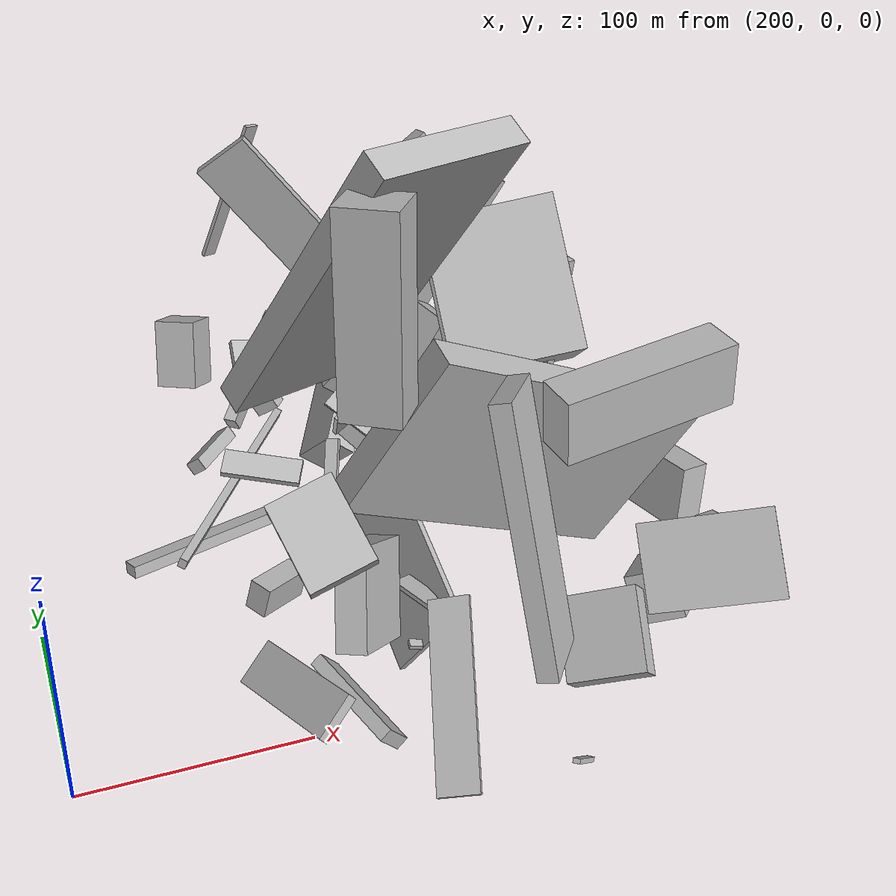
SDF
<sdf version="1.6">
 <world name="default">
  <model name="building_1">
   <static>0</static>
   <pose>416.7283779944425 210.92979826897448 18.98239796938811 0.8828051827888167 0.32550872839916073 -2.833453676443939</pose>
   <link name="link">
    <gravity>0</gravity>
    <pose>0 0 6.5 0 0 0</pose>
    <collision name="collision"><geometry><box><size>4 32 13</size></box></geometry></collision>
    <visual name="visual">
     <cast_shadows>0</cast_shadows>
     <geometry><box><size>4 32 13</size></box></geometry>
     <material>
      <script>
       <uri>model://HANNAS_wall/materials/scripts</uri>
       <uri>model://HANNAS_wall/materials/textures</uri>
       <name>vrc/HANNAS_wall</name>
      </script>
     </material>
    </visual>
   </link>
  </model>
  <model name="building_7">
   <static>0</static>
   <pose>321.18293519040907 90.14032634972115 120.52418748455804 0.07833895289617772 -0.5774066002061583 1.9267652480553856</pose>
   <link name="link">
    <gravity>0</gravity>
    <pose>0 0 75.0 0 0 0</pose>
    <collision name="collision"><geometry><box><size>13 71 150</size></box></geometry></collision>
    <visual name="visual">
     <cast_shadows>0</cast_shadows>
     <geometry><box><size>13 71 150</size></box></geometry>
     <material>
      <script>
       <uri>model://HANNAS_wall/materials/scripts</uri>
       <uri>model://HANNAS_wall/materials/textures</uri>
       <name>vrc/HANNAS_wall</name>
      </script>
     </material>
    </visual>
   </link>
  </model>
  <model name="building_13">
   <static>0</static>
   <pose>305.72085957441516 170.0902135539302 17.677615049925144 2.993033016660117 -1.1944992597726782 -0.42007366668599083</pose>
   <link name="link">
    <gravity>0</gravity>
    <pose>0 0 2.0 0 0 0</pose>
    <collision name="collision"><geometry><box><size>5 150 4</size></box></geometry></collision>
    <visual name="visual">
     <cast_shadows>0</cast_shadows>
     <geometry><box><size>5 150 4</size></box></geometry>
     <material>
      <script>
       <uri>model://HANNAS_wall/materials/scripts</uri>
       <uri>model://HANNAS_wall/materials/textures</uri>
       <name>vrc/HANNAS_wall</name>
      </script>
     </material>
    </visual>
   </link>
  </model>
  <model name="building_15">
   <static>0</static>
   <pose>293.0118756271913 4.474258770411966 95.61094297676232 -1.181248603299123 0.5923829690147229 -1.2979223778832998</pose>
   <link name="link">
    <gravity>0</gravity>
    <pose>0 0 14.5 0 0 0</pose>
    <collision name="collision"><geometry><box><size>39 8 29</size></box></geometry></collision>
    <visual name="visual">
     <cast_shadows>0</cast_shadows>
     <geometry><box><size>39 8 29</size></box></geometry>
     <material>
      <script>
       <uri>model://HANNAS_wall/materials/scripts</uri>
       <uri>model://HANNAS_wall/materials/textures</uri>
       <name>vrc/HANNAS_wall</name>
      </script>
     </material>
    </visual>
   </link>
  </model>
  <model name="building_16">
   <static>0</static>
   <pose>411.00323146773076 41.315731008576535 88.35890527292715 1.0472873956849313 1.0478627989128555 2.7460470604189346</pose>
   <link name="link">
    <gravity>0</gravity>
    <pose>0 0 7.5 0 0 0</pose>
    <collision name="collision"><geometry><box><size>83 150 15</size></box></geometry></collision>
    <visual name="visual">
     <cast_shadows>0</cast_shadows>
     <geometry><box><size>83 150 15</size></box></geometry>
     <material>
      <script>
       <uri>model://HANNAS_wall/materials/scripts</uri>
       <uri>model://HANNAS_wall/materials/textures</uri>
       <name>vrc/HANNAS_wall</name>
      </script>
     </material>
    </visual>
   </link>
  </model>
  <model name="building_29">
   <static>0</static>
   <pose>388.6430166010418 163.41789401701087 66.54947921734367 -2.8306492783292816 -0.9800535455750119 0.1352461155828603</pose>
   <link name="link">
    <gravity>0</gravity>
    <pose>0 0 7.0 0 0 0</pose>
    <collision name="collision"><geometry><box><size>80 23 14</size></box></geometry></collision>
    <visual name="visual">
     <cast_shadows>0</cast_shadows>
     <geometry><box><size>80 23 14</size></box></geometry>
     <material>
      <script>
       <uri>model://HANNAS_wall/materials/scripts</uri>
       <uri>model://HANNAS_wall/materials/textures</uri>
       <name>vrc/HANNAS_wall</name>
      </script>
     </material>
    </visual>
   </link>
  </model>
  <model name="building_34">
   <static>0</static>
   <pose>457.249233680536 230.10714518390355 50.29948453529093 1.4610760816705493 0.3465931190292476 -0.05478114516371952</pose>
   <link name="link">
    <gravity>0</gravity>
    <pose>0 0 14.0 0 0 0</pose>
    <collision name="collision"><geometry><box><size>4 91 28</size></box></geometry></collision>
    <visual name="visual">
     <cast_shadows>0</cast_shadows>
     <geometry><box><size>4 91 28</size></box></geometry>
     <material>
      <script>
       <uri>model://HANNAS_wall/materials/scripts</uri>
       <uri>model://HANNAS_wall/materials/textures</uri>
       <name>vrc/HANNAS_wall</name>
      </script>
     </material>
    </visual>
   </link>
  </model>
  <model name="building_36">
   <static>0</static>
   <pose>457.0760395988106 278.03870297747267 100.75126773818518 1.3999977492001678 -0.5422269586380859 0.1986078250218042</pose>
   <link name="link">
    <gravity>0</gravity>
    <pose>0 0 5.0 0 0 0</pose>
    <collision name="collision"><geometry><box><size>34 93 10</size></box></geometry></collision>
    <visual name="visual">
     <cast_shadows>0</cast_shadows>
     <geometry><box><size>34 93 10</size></box></geometry>
     <material>
      <script>
       <uri>model://HANNAS_wall/materials/scripts</uri>
       <uri>model://HANNAS_wall/materials/textures</uri>
       <name>vrc/HANNAS_wall</name>
      </script>
     </material>
    </visual>
   </link>
  </model>
  <model name="building_37">
   <static>0</static>
   <pose>379.0592005224741 -23.764757103029154 96.92471146740642 1.7718425149192778 0.2510704126976804 2.56736003662285</pose>
   <link name="link">
    <gravity>0</gravity>
    <pose>0 0 18.0 0 0 0</pose>
    <collision name="collision"><geometry><box><size>9 117 36</size></box></geometry></collision>
    <visual name="visual">
     <cast_shadows>0</cast_shadows>
     <geometry><box><size>9 117 36</size></box></geometry>
     <material>
      <script>
       <uri>model://HANNAS_wall/materials/scripts</uri>
       <uri>model://HANNAS_wall/materials/textures</uri>
       <name>vrc/HANNAS_wall</name>
      </script>
     </material>
    </visual>
   </link>
  </model>
  <model name="building_39">
   <static>0</static>
   <pose>442.8398557383572 117.53490383616747 67.34212026707625 1.6865817141151425 0.20395103959422184 -0.6415227648487057</pose>
   <link name="link">
    <gravity>0</gravity>
    <pose>0 0 20.0 0 0 0</pose>
    <collision name="collision"><geometry><box><size>14 35 40</size></box></geometry></collision>
    <visual name="visual">
     <cast_shadows>0</cast_shadows>
     <geometry><box><size>14 35 40</size></box></geometry>
     <material>
      <script>
       <uri>model://HANNAS_wall/materials/scripts</uri>
       <uri>model://HANNAS_wall/materials/textures</uri>
       <name>vrc/HANNAS_wall</name>
      </script>
     </material>
    </visual>
   </link>
  </model>
  <model name="building_46">
   <static>0</static>
   <pose>457.6577896727 179.8000820094232 74.88433627355745 1.6225985377909675 -0.5171672315456065 0.15397538739588865</pose>
   <link name="link">
    <gravity>0</gravity>
    <pose>0 0 13.0 0 0 0</pose>
    <collision name="collision"><geometry><box><size>6 76 26</size></box></geometry></collision>
    <visual name="visual">
     <cast_shadows>0</cast_shadows>
     <geometry><box><size>6 76 26</size></box></geometry>
     <material>
      <script>
       <uri>model://HANNAS_wall/materials/scripts</uri>
       <uri>model://HANNAS_wall/materials/textures</uri>
       <name>vrc/HANNAS_wall</name>
      </script>
     </material>
    </visual>
   </link>
  </model>
  <model name="building_56">
   <static>0</static>
   <pose>363.96399760905854 201.25691900231197 29.23682638233622 -2.523152872906114 -0.7529717049045235 -0.963471648952157</pose>
   <link name="link">
    <gravity>0</gravity>
    <pose>0 0 8.5 0 0 0</pose>
    <collision name="collision"><geometry><box><size>27 47 17</size></box></geometry></collision>
    <visual name="visual">
     <cast_shadows>0</cast_shadows>
     <geometry><box><size>27 47 17</size></box></geometry>
     <material>
      <script>
       <uri>model://HANNAS_wall/materials/scripts</uri>
       <uri>model://HANNAS_wall/materials/textures</uri>
       <name>vrc/HANNAS_wall</name>
      </script>
     </material>
    </visual>
   </link>
  </model>
  <model name="building_58">
   <static>0</static>
   <pose>329.5560212792253 38.69504867784643 39.858980811942224 1.2039733850542333 -1.0369723725487037 1.2764648942042573</pose>
   <link name="link">
    <gravity>0</gravity>
    <pose>0 0 7.0 0 0 0</pose>
    <collision name="collision"><geometry><box><size>45 43 14</size></box></geometry></collision>
    <visual name="visual">
     <cast_shadows>0</cast_shadows>
     <geometry><box><size>45 43 14</size></box></geometry>
     <material>
      <script>
       <uri>model://HANNAS_wall/materials/scripts</uri>
       <uri>model://HANNAS_wall/materials/textures</uri>
       <name>vrc/HANNAS_wall</name>
      </script>
     </material>
    </visual>
   </link>
  </model>
  <model name="building_66">
   <static>0</static>
   <pose>399.27912694415147 125.6979651761637 123.77829271662075 1.2284308621992117 -0.9448046200631898 1.6108726302940024</pose>
   <link name="link">
    <gravity>0</gravity>
    <pose>0 0 30.0 0 0 0</pose>
    <collision name="collision"><geometry><box><size>71 62 60</size></box></geometry></collision>
    <visual name="visual">
     <cast_shadows>0</cast_shadows>
     <geometry><box><size>71 62 60</size></box></geometry>
     <material>
      <script>
       <uri>model://HANNAS_wall/materials/scripts</uri>
       <uri>model://HANNAS_wall/materials/textures</uri>
       <name>vrc/HANNAS_wall</name>
      </script>
     </material>
    </visual>
   </link>
  </model>
  <model name="building_69">
   <static>0</static>
   <pose>365.8626949552328 266.1390472893552 84.93098804419613 0.911775679731943 -0.11340827124241343 1.2286444047596934</pose>
   <link name="link">
    <gravity>0</gravity>
    <pose>0 0 16.0 0 0 0</pose>
    <collision name="collision"><geometry><box><size>5 150 32</size></box></geometry></collision>
    <visual name="visual">
     <cast_shadows>0</cast_shadows>
     <geometry><box><size>5 150 32</size></box></geometry>
     <material>
      <script>
       <uri>model://HANNAS_wall/materials/scripts</uri>
       <uri>model://HANNAS_wall/materials/textures</uri>
       <name>vrc/HANNAS_wall</name>
      </script>
     </material>
    </visual>
   </link>
  </model>
  <model name="building_73">
   <static>0</static>
   <pose>476.47829088824085 258.6457575517334 19.08068131936118 1.6131036434345054 -0.4751557094998857 -2.8073766236844353</pose>
   <link name="link">
    <gravity>0</gravity>
    <pose>0 0 7.0 0 0 0</pose>
    <collision name="collision"><geometry><box><size>19 9 14</size></box></geometry></collision>
    <visual name="visual">
     <cast_shadows>0</cast_shadows>
     <geometry><box><size>19 9 14</size></box></geometry>
     <material>
      <script>
       <uri>model://HANNAS_wall/materials/scripts</uri>
       <uri>model://HANNAS_wall/materials/textures</uri>
       <name>vrc/HANNAS_wall</name>
      </script>
     </material>
    </visual>
   </link>
  </model>
  <model name="building_75">
   <static>0</static>
   <pose>430.14357798420775 187.78840390034736 52.85955436321646 0.9136845108514831 0.03224375944392112 -1.0505137641790114</pose>
   <link name="link">
    <gravity>0</gravity>
    <pose>0 0 2.5 0 0 0</pose>
    <collision name="collision"><geometry><box><size>15 52 5</size></box></geometry></collision>
    <visual name="visual">
     <cast_shadows>0</cast_shadows>
     <geometry><box><size>15 52 5</size></box></geometry>
     <material>
      <script>
       <uri>model://HANNAS_wall/materials/scripts</uri>
       <uri>model://HANNAS_wall/materials/textures</uri>
       <name>vrc/HANNAS_wall</name>
      </script>
     </material>
    </visual>
   </link>
  </model>
  <model name="building_78">
   <static>0</static>
   <pose>449.657005607969 99.06475988580239 122.0125334129476 -0.8325012953534934 -1.4602866425835055 -0.442791761606325</pose>
   <link name="link">
    <gravity>0</gravity>
    <pose>0 0 25.0 0 0 0</pose>
    <collision name="collision"><geometry><box><size>59 4 50</size></box></geometry></collision>
    <visual name="visual">
     <cast_shadows>0</cast_shadows>
     <geometry><box><size>59 4 50</size></box></geometry>
     <material>
      <script>
       <uri>model://HANNAS_wall/materials/scripts</uri>
       <uri>model://HANNAS_wall/materials/textures</uri>
       <name>vrc/HANNAS_wall</name>
      </script>
     </material>
    </visual>
   </link>
  </model>
  <model name="building_80">
   <static>0</static>
   <pose>489.20256372766295 196.7360834247855 27.286272871165902 2.3840841821876944 -0.7897469009757659 -2.793348272971265</pose>
   <link name="link">
    <gravity>0</gravity>
    <pose>0 0 6.0 0 0 0</pose>
    <collision name="collision"><geometry><box><size>4 8 12</size></box></geometry></collision>
    <visual name="visual">
     <cast_shadows>0</cast_shadows>
     <geometry><box><size>4 8 12</size></box></geometry>
     <material>
      <script>
       <uri>model://HANNAS_wall/materials/scripts</uri>
       <uri>model://HANNAS_wall/materials/textures</uri>
       <name>vrc/HANNAS_wall</name>
      </script>
     </material>
    </visual>
   </link>
  </model>
  <model name="building_83">
   <static>0</static>
   <pose>346.1227019259903 190.87297713084067 59.972242830875516 2.4194749083358547 1.1388717131956836 -1.9640425179913596</pose>
   <link name="link">
    <gravity>0</gravity>
    <pose>0 0 2.0 0 0 0</pose>
    <collision name="collision"><geometry><box><size>7 49 4</size></box></geometry></collision>
    <visual name="visual">
     <cast_shadows>0</cast_shadows>
     <geometry><box><size>7 49 4</size></box></geometry>
     <material>
      <script>
       <uri>model://HANNAS_wall/materials/scripts</uri>
       <uri>model://HANNAS_wall/materials/textures</uri>
       <name>vrc/HANNAS_wall</name>
      </script>
     </material>
    </visual>
   </link>
  </model>
  <model name="building_91">
   <static>0</static>
   <pose>317.00248711427525 146.15823586757512 38.94900789006553 3.0376621913909494 0.49378347296533126 -2.060651664440267</pose>
   <link name="link">
    <gravity>0</gravity>
    <pose>0 0 2.0 0 0 0</pose>
    <collision name="collision"><geometry><box><size>13 39 4</size></box></geometry></collision>
    <visual name="visual">
     <cast_shadows>0</cast_shadows>
     <geometry><box><size>13 39 4</size></box></geometry>
     <material>
      <script>
       <uri>model://HANNAS_wall/materials/scripts</uri>
       <uri>model://HANNAS_wall/materials/textures</uri>
       <name>vrc/HANNAS_wall</name>
      </script>
     </material>
    </visual>
   </link>
  </model>
  <model name="building_95">
   <static>0</static>
   <pose>486.37256333069 70.01814231644202 43.91703869220627 2.465859368603533 -1.4692860908054397 0.902849779842075</pose>
   <link name="link">
    <gravity>0</gravity>
    <pose>0 0 7.0 0 0 0</pose>
    <collision name="collision"><geometry><box><size>32 49 14</size></box></geometry></collision>
    <visual name="visual">
     <cast_shadows>0</cast_shadows>
     <geometry><box><size>32 49 14</size></box></geometry>
     <material>
      <script>
       <uri>model://HANNAS_wall/materials/scripts</uri>
       <uri>model://HANNAS_wall/materials/textures</uri>
       <name>vrc/HANNAS_wall</name>
      </script>
     </material>
    </visual>
   </link>
  </model>
  <model name="building_106">
   <static>0</static>
   <pose>422.5730622116431 216.7877350872582 77.15961411873042 0.15449135935117675 0.552107405858267 0.27078738645763417</pose>
   <link name="link">
    <gravity>0</gravity>
    <pose>0 0 40.0 0 0 0</pose>
    <collision name="collision"><geometry><box><size>11 6 80</size></box></geometry></collision>
    <visual name="visual">
     <cast_shadows>0</cast_shadows>
     <geometry><box><size>11 6 80</size></box></geometry>
     <material>
      <script>
       <uri>model://HANNAS_wall/materials/scripts</uri>
       <uri>model://HANNAS_wall/materials/textures</uri>
       <name>vrc/HANNAS_wall</name>
      </script>
     </material>
    </visual>
   </link>
  </model>
  <model name="building_108">
   <static>0</static>
   <pose>313.3329752314691 265.2259818146147 40.14841009612861 -1.9158574941276698 -1.246538846733231 1.2866411623613208</pose>
   <link name="link">
    <gravity>0</gravity>
    <pose>0 0 11.5 0 0 0</pose>
    <collision name="collision"><geometry><box><size>37 21 23</size></box></geometry></collision>
    <visual name="visual">
     <cast_shadows>0</cast_shadows>
     <geometry><box><size>37 21 23</size></box></geometry>
     <material>
      <script>
       <uri>model://HANNAS_wall/materials/scripts</uri>
       <uri>model://HANNAS_wall/materials/textures</uri>
       <name>vrc/HANNAS_wall</name>
      </script>
     </material>
    </visual>
   </link>
  </model>
  <model name="building_112">
   <static>0</static>
   <pose>429.3280615655318 -9.371850978719056 25.48867288802772 -0.5132500371576331 -0.648340227710543 1.3303308879779345</pose>
   <link name="link">
    <gravity>0</gravity>
    <pose>0 0 6.0 0 0 0</pose>
    <collision name="collision"><geometry><box><size>37 35 12</size></box></geometry></collision>
    <visual name="visual">
     <cast_shadows>0</cast_shadows>
     <geometry><box><size>37 35 12</size></box></geometry>
     <material>
      <script>
       <uri>model://HANNAS_wall/materials/scripts</uri>
       <uri>model://HANNAS_wall/materials/textures</uri>
       <name>vrc/HANNAS_wall</name>
      </script>
     </material>
    </visual>
   </link>
  </model>
  <model name="building_113">
   <static>0</static>
   <pose>351.75602927940236 -25.21822038322445 31.0880091699745 0.6014661158206445 -0.3114937482552844 -0.5002535703727622</pose>
   <link name="link">
    <gravity>0</gravity>
    <pose>0 0 1.0 0 0 0</pose>
    <collision name="collision"><geometry><box><size>18 80 2</size></box></geometry></collision>
    <visual name="visual">
     <cast_shadows>0</cast_shadows>
     <geometry><box><size>18 80 2</size></box></geometry>
     <material>
      <script>
       <uri>model://HANNAS_wall/materials/scripts</uri>
       <uri>model://HANNAS_wall/materials/textures</uri>
       <name>vrc/HANNAS_wall</name>
      </script>
     </material>
    </visual>
   </link>
  </model>
  <model name="building_115">
   <static>0</static>
   <pose>369.2684045399191 29.47378663381967 25.99447643424424 -1.475940865460995 0.2350424718179134 0.4996471460523976</pose>
   <link name="link">
    <gravity>0</gravity>
    <pose>0 0 13.5 0 0 0</pose>
    <collision name="collision"><geometry><box><size>11 2 27</size></box></geometry></collision>
    <visual name="visual">
     <cast_shadows>0</cast_shadows>
     <geometry><box><size>11 2 27</size></box></geometry>
     <material>
      <script>
       <uri>model://HANNAS_wall/materials/scripts</uri>
       <uri>model://HANNAS_wall/materials/textures</uri>
       <name>vrc/HANNAS_wall</name>
      </script>
     </material>
    </visual>
   </link>
  </model>
  <model name="building_124">
   <static>0</static>
   <pose>401.70941161766746 132.18391191827504 56.450102386859214 0.6327620110769436 0.4537174029529805 2.7188911823203927</pose>
   <link name="link">
    <gravity>0</gravity>
    <pose>0 0 2.0 0 0 0</pose>
    <collision name="collision"><geometry><box><size>6 20 4</size></box></geometry></collision>
    <visual name="visual">
     <cast_shadows>0</cast_shadows>
     <geometry><box><size>6 20 4</size></box></geometry>
     <material>
      <script>
       <uri>model://HANNAS_wall/materials/scripts</uri>
       <uri>model://HANNAS_wall/materials/textures</uri>
       <name>vrc/HANNAS_wall</name>
      </script>
     </material>
    </visual>
   </link>
  </model>
  <model name="building_127">
   <static>0</static>
   <pose>361.75209405764963 286.79138329998966 35.17495688443237 2.5489926137126138 -0.49169000456192735 2.720610101038984</pose>
   <link name="link">
    <gravity>0</gravity>
    <pose>0 0 1.0 0 0 0</pose>
    <collision name="collision"><geometry><box><size>20 17 2</size></box></geometry></collision>
    <visual name="visual">
     <cast_shadows>0</cast_shadows>
     <geometry><box><size>20 17 2</size></box></geometry>
     <material>
      <script>
       <uri>model://HANNAS_wall/materials/scripts</uri>
       <uri>model://HANNAS_wall/materials/textures</uri>
       <name>vrc/HANNAS_wall</name>
      </script>
     </material>
    </visual>
   </link>
  </model>
  <model name="building_131">
   <static>0</static>
   <pose>365.9706727161073 173.7083122480752 84.83728366238124 -0.8633403085846044 -0.23379369376280346 1.4385850544872596</pose>
   <link name="link">
    <gravity>0</gravity>
    <pose>0 0 7.0 0 0 0</pose>
    <collision name="collision"><geometry><box><size>70 10 14</size></box></geometry></collision>
    <visual name="visual">
     <cast_shadows>0</cast_shadows>
     <geometry><box><size>70 10 14</size></box></geometry>
     <material>
      <script>
       <uri>model://HANNAS_wall/materials/scripts</uri>
       <uri>model://HANNAS_wall/materials/textures</uri>
       <name>vrc/HANNAS_wall</name>
      </script>
     </material>
    </visual>
   </link>
  </model>
  <model name="building_138">
   <static>0</static>
   <pose>294.23806833684785 37.13948605273141 46.30469928434575 -0.18462439882660148 0.1494504506471539 -0.9629700547610163</pose>
   <link name="link">
    <gravity>0</gravity>
    <pose>0 0 6.5 0 0 0</pose>
    <collision name="collision"><geometry><box><size>10 25 13</size></box></geometry></collision>
    <visual name="visual">
     <cast_shadows>0</cast_shadows>
     <geometry><box><size>10 25 13</size></box></geometry>
     <material>
      <script>
       <uri>model://HANNAS_wall/materials/scripts</uri>
       <uri>model://HANNAS_wall/materials/textures</uri>
       <name>vrc/HANNAS_wall</name>
      </script>
     </material>
    </visual>
   </link>
  </model>
  <model name="building_149">
   <static>0</static>
   <pose>369.3165522928846 257.1093276851775 47.49732094912308 1.743699431746775 -0.3918637991634492 -0.5017964476277167</pose>
   <link name="link">
    <gravity>0</gravity>
    <pose>0 0 5.0 0 0 0</pose>
    <collision name="collision"><geometry><box><size>2 2 10</size></box></geometry></collision>
    <visual name="visual">
     <cast_shadows>0</cast_shadows>
     <geometry><box><size>2 2 10</size></box></geometry>
     <material>
      <script>
       <uri>model://HANNAS_wall/materials/scripts</uri>
       <uri>model://HANNAS_wall/materials/textures</uri>
       <name>vrc/HANNAS_wall</name>
      </script>
     </material>
    </visual>
   </link>
  </model>
  <model name="building_163">
   <static>0</static>
   <pose>452.7937043170224 88.85650968251547 58.84904787771336 -3.0642907604655445 -1.2783173050366765 1.2316994184170125</pose>
   <link name="link">
    <gravity>0</gravity>
    <pose>0 0 25.5 0 0 0</pose>
    <collision name="collision"><geometry><box><size>13 4 51</size></box></geometry></collision>
    <visual name="visual">
     <cast_shadows>0</cast_shadows>
     <geometry><box><size>13 4 51</size></box></geometry>
     <material>
      <script>
       <uri>model://HANNAS_wall/materials/scripts</uri>
       <uri>model://HANNAS_wall/materials/textures</uri>
       <name>vrc/HANNAS_wall</name>
      </script>
     </material>
    </visual>
   </link>
  </model>
  <model name="building_165">
   <static>0</static>
   <pose>335.57052285467626 88.78791125671438 56.218840200725246 0.7793475014270441 -0.18068173421298092 -0.5522395537673732</pose>
   <link name="link">
    <gravity>0</gravity>
    <pose>0 0 1.5 0 0 0</pose>
    <collision name="collision"><geometry><box><size>6 51 3</size></box></geometry></collision>
    <visual name="visual">
     <cast_shadows>0</cast_shadows>
     <geometry><box><size>6 51 3</size></box></geometry>
     <material>
      <script>
       <uri>model://HANNAS_wall/materials/scripts</uri>
       <uri>model://HANNAS_wall/materials/textures</uri>
       <name>vrc/HANNAS_wall</name>
      </script>
     </material>
    </visual>
   </link>
  </model>
  <model name="building_170">
   <static>0</static>
   <pose>446.2461324147872 15.122900395823383 116.65607429519787 -0.04124243475620482 0.09692599358590012 -3.0240005264980327</pose>
   <link name="link">
    <gravity>0</gravity>
    <pose>0 0 15.0 0 0 0</pose>
    <collision name="collision"><geometry><box><size>80 19 30</size></box></geometry></collision>
    <visual name="visual">
     <cast_shadows>0</cast_shadows>
     <geometry><box><size>80 19 30</size></box></geometry>
     <material>
      <script>
       <uri>model://HANNAS_wall/materials/scripts</uri>
       <uri>model://HANNAS_wall/materials/textures</uri>
       <name>vrc/HANNAS_wall</name>
      </script>
     </material>
    </visual>
   </link>
  </model>
  <model name="building_173">
   <static>0</static>
   <pose>474.2117444123524 210.18173411613623 10.415541309828823 0.9365753353007944 -0.16165642402721994 -0.7828230822666644</pose>
   <link name="link">
    <gravity>0</gravity>
    <pose>0 0 6.0 0 0 0</pose>
    <collision name="collision"><geometry><box><size>24 10 12</size></box></geometry></collision>
    <visual name="visual">
     <cast_shadows>0</cast_shadows>
     <geometry><box><size>24 10 12</size></box></geometry>
     <material>
      <script>
       <uri>model://HANNAS_wall/materials/scripts</uri>
       <uri>model://HANNAS_wall/materials/textures</uri>
       <name>vrc/HANNAS_wall</name>
      </script>
     </material>
    </visual>
   </link>
  </model>
  <model name="building_174">
   <static>0</static>
   <pose>359.5808154215357 104.97031686609147 38.86329453842737 2.0105169324928616 0.4133534662081634 0.23634124488091307</pose>
   <link name="link">
    <gravity>0</gravity>
    <pose>0 0 40.0 0 0 0</pose>
    <collision name="collision"><geometry><box><size>3 46 80</size></box></geometry></collision>
    <visual name="visual">
     <cast_shadows>0</cast_shadows>
     <geometry><box><size>3 46 80</size></box></geometry>
     <material>
      <script>
       <uri>model://HANNAS_wall/materials/scripts</uri>
       <uri>model://HANNAS_wall/materials/textures</uri>
       <name>vrc/HANNAS_wall</name>
      </script>
     </material>
    </visual>
   </link>
  </model>
  <model name="building_183">
   <static>0</static>
   <pose>452.0002055676973 -40.28192570525388 84.71014822423041 2.695352748670511 -0.8760170750224685 1.4285386869640437</pose>
   <link name="link">
    <gravity>0</gravity>
    <pose>0 0 1.0 0 0 0</pose>
    <collision name="collision"><geometry><box><size>36 54 2</size></box></geometry></collision>
    <visual name="visual">
     <cast_shadows>0</cast_shadows>
     <geometry><box><size>36 54 2</size></box></geometry>
     <material>
      <script>
       <uri>model://HANNAS_wall/materials/scripts</uri>
       <uri>model://HANNAS_wall/materials/textures</uri>
       <name>vrc/HANNAS_wall</name>
      </script>
     </material>
    </visual>
   </link>
  </model>
  <model name="building_195">
   <static>0</static>
   <pose>398.6148518912083 -56.11403691110969 9.936649229690644 0.8857116902244666 -0.1574499618858989 -0.7708297915637211</pose>
   <link name="link">
    <gravity>0</gravity>
    <pose>0 0 9.5 0 0 0</pose>
    <collision name="collision"><geometry><box><size>3 2 19</size></box></geometry></collision>
    <visual name="visual">
     <cast_shadows>0</cast_shadows>
     <geometry><box><size>3 2 19</size></box></geometry>
     <material>
      <script>
       <uri>model://HANNAS_wall/materials/scripts</uri>
       <uri>model://HANNAS_wall/materials/textures</uri>
       <name>vrc/HANNAS_wall</name>
      </script>
     </material>
    </visual>
   </link>
  </model>
  <model name="building_200">
   <static>0</static>
   <pose>475.4740956115719 -12.047044035503074 72.79756329516431 -1.8802935923014712 -1.2786365887042017 1.9335715009967556</pose>
   <link name="link">
    <gravity>0</gravity>
    <pose>0 0 9.5 0 0 0</pose>
    <collision name="collision"><geometry><box><size>17 11 19</size></box></geometry></collision>
    <visual name="visual">
     <cast_shadows>0</cast_shadows>
     <geometry><box><size>17 11 19</size></box></geometry>
     <material>
      <script>
       <uri>model://HANNAS_wall/materials/scripts</uri>
       <uri>model://HANNAS_wall/materials/textures</uri>
       <name>vrc/HANNAS_wall</name>
      </script>
     </material>
    </visual>
   </link>
  </model>
  <model name="building_202">
   <static>0</static>
   <pose>468.31813455069744 24.39104427543413 32.188247212938684 2.6861691440328332 0.2882680797660198 0.844940834363414</pose>
   <link name="link">
    <gravity>0</gravity>
    <pose>0 0 11.5 0 0 0</pose>
    <collision name="collision"><geometry><box><size>32 22 23</size></box></geometry></collision>
    <visual name="visual">
     <cast_shadows>0</cast_shadows>
     <geometry><box><size>32 22 23</size></box></geometry>
     <material>
      <script>
       <uri>model://HANNAS_wall/materials/scripts</uri>
       <uri>model://HANNAS_wall/materials/textures</uri>
       <name>vrc/HANNAS_wall</name>
      </script>
     </material>
    </visual>
   </link>
  </model>
  <model name="building_209">
   <static>0</static>
   <pose>329.39686558107206 237.78296918842636 18.651445602026133 0.5457061714893708 -0.005680434530325027 -0.7026483183357048</pose>
   <link name="link">
    <gravity>0</gravity>
    <pose>0 0 4.5 0 0 0</pose>
    <collision name="collision"><geometry><box><size>7 30 9</size></box></geometry></collision>
    <visual name="visual">
     <cast_shadows>0</cast_shadows>
     <geometry><box><size>7 30 9</size></box></geometry>
     <material>
      <script>
       <uri>model://HANNAS_wall/materials/scripts</uri>
       <uri>model://HANNAS_wall/materials/textures</uri>
       <name>vrc/HANNAS_wall</name>
      </script>
     </material>
    </visual>
   </link>
  </model>
  <model name="building_214">
   <static>0</static>
   <pose>467.6491806465598 285.6639639863521 7.835302648742471 0.00489829784198263 -0.6212207790194048 -1.2685420099865268</pose>
   <link name="link">
    <gravity>0</gravity>
    <pose>0 0 3.0 0 0 0</pose>
    <collision name="collision"><geometry><box><size>8 34 6</size></box></geometry></collision>
    <visual name="visual">
     <cast_shadows>0</cast_shadows>
     <geometry><box><size>8 34 6</size></box></geometry>
     <material>
      <script>
       <uri>model://HANNAS_wall/materials/scripts</uri>
       <uri>model://HANNAS_wall/materials/textures</uri>
       <name>vrc/HANNAS_wall</name>
      </script>
     </material>
    </visual>
   </link>
  </model>
  <model name="building_216">
   <static>0</static>
   <pose>342.04798197796106 245.93192462902502 11.973776119453127 1.5822660829692505 0.5981189430325423 2.5408048092398454</pose>
   <link name="link">
    <gravity>0</gravity>
    <pose>0 0 4.5 0 0 0</pose>
    <collision name="collision"><geometry><box><size>14 12 9</size></box></geometry></collision>
    <visual name="visual">
     <cast_shadows>0</cast_shadows>
     <geometry><box><size>14 12 9</size></box></geometry>
     <material>
      <script>
       <uri>model://HANNAS_wall/materials/scripts</uri>
       <uri>model://HANNAS_wall/materials/textures</uri>
       <name>vrc/HANNAS_wall</name>
      </script>
     </material>
    </visual>
   </link>
  </model>
  <model name="building_218">
   <static>0</static>
   <pose>352.29300106038335 20.582691918619144 17.04311837675122 0.988191651833156 1.2887185298257378 2.384891948484386</pose>
   <link name="link">
    <gravity>0</gravity>
    <pose>0 0 2.0 0 0 0</pose>
    <collision name="collision"><geometry><box><size>2 6 4</size></box></geometry></collision>
    <visual name="visual">
     <cast_shadows>0</cast_shadows>
     <geometry><box><size>2 6 4</size></box></geometry>
     <material>
      <script>
       <uri>model://HANNAS_wall/materials/scripts</uri>
       <uri>model://HANNAS_wall/materials/textures</uri>
       <name>vrc/HANNAS_wall</name>
      </script>
     </material>
    </visual>
   </link>
  </model>
  <model name="building_219">
   <static>0</static>
   <pose>346.66386774198395 279.6223613751373 23.531581854383386 2.476466319866069 -0.21196051848660874 -3.068850507295459</pose>
   <link name="link">
    <gravity>0</gravity>
    <pose>0 0 2.0 0 0 0</pose>
    <collision name="collision"><geometry><box><size>26 21 4</size></box></geometry></collision>
    <visual name="visual">
     <cast_shadows>0</cast_shadows>
     <geometry><box><size>26 21 4</size></box></geometry>
     <material>
      <script>
       <uri>model://HANNAS_wall/materials/scripts</uri>
       <uri>model://HANNAS_wall/materials/textures</uri>
       <name>vrc/HANNAS_wall</name>
      </script>
     </material>
    </visual>
   </link>
  </model>
  <model name="building_220">
   <static>0</static>
   <pose>470.0754260198901 258.85509088189366 112.603108990624 -2.3637758400071887 0.9445750876647167 1.8744059173321086</pose>
   <link name="link">
    <gravity>0</gravity>
    <pose>0 0 1.0 0 0 0</pose>
    <collision name="collision"><geometry><box><size>2 30 2</size></box></geometry></collision>
    <visual name="visual">
     <cast_shadows>0</cast_shadows>
     <geometry><box><size>2 30 2</size></box></geometry>
     <material>
      <script>
       <uri>model://HANNAS_wall/materials/scripts</uri>
       <uri>model://HANNAS_wall/materials/textures</uri>
       <name>vrc/HANNAS_wall</name>
      </script>
     </material>
    </visual>
   </link>
  </model>
  <model name="building_233">
   <static>0</static>
   <pose>387.95294799120194 220.31789161549537 28.41024077228776 -1.2310520696516039 -0.9053217860827084 -2.4595027720515183</pose>
   <link name="link">
    <gravity>0</gravity>
    <pose>0 0 1.0 0 0 0</pose>
    <collision name="collision"><geometry><box><size>2 2 2</size></box></geometry></collision>
    <visual name="visual">
     <cast_shadows>0</cast_shadows>
     <geometry><box><size>2 2 2</size></box></geometry>
     <material>
      <script>
       <uri>model://HANNAS_wall/materials/scripts</uri>
       <uri>model://HANNAS_wall/materials/textures</uri>
       <name>vrc/HANNAS_wall</name>
      </script>
     </material>
    </visual>
   </link>
  </model>
  <model name="building_239">
   <static>0</static>
   <pose>305.23774717082847 -17.08809469555211 24.82821457883003 -1.8025635811624479 -0.6293291906268578 0.48877135629824386</pose>
   <link name="link">
    <gravity>0</gravity>
    <pose>0 0 29.0 0 0 0</pose>
    <collision name="collision"><geometry><box><size>21 5 58</size></box></geometry></collision>
    <visual name="visual">
     <cast_shadows>0</cast_shadows>
     <geometry><box><size>21 5 58</size></box></geometry>
     <material>
      <script>
       <uri>model://HANNAS_wall/materials/scripts</uri>
       <uri>model://HANNAS_wall/materials/textures</uri>
       <name>vrc/HANNAS_wall</name>
      </script>
     </material>
    </visual>
   </link>
  </model>
  <model name="building_247">
   <static>0</static>
   <pose>377.70848694373143 130.0084820133285 32.53918769429923 -1.6577343377849316 0.5994209003009108 1.9315052020326544</pose>
   <link name="link">
    <gravity>0</gravity>
    <pose>0 0 1.0 0 0 0</pose>
    <collision name="collision"><geometry><box><size>80 2 2</size></box></geometry></collision>
    <visual name="visual">
     <cast_shadows>0</cast_shadows>
     <geometry><box><size>80 2 2</size></box></geometry>
     <material>
      <script>
       <uri>model://HANNAS_wall/materials/scripts</uri>
       <uri>model://HANNAS_wall/materials/textures</uri>
       <name>vrc/HANNAS_wall</name>
      </script>
     </material>
    </visual>
   </link>
  </model>
  <model name="building_249">
   <static>0</static>
   <pose>319.34405082290175 145.7787790405207 9.122912776448164 -1.1237830145801757 -1.412244703786039 1.4971265196039163</pose>
   <link name="link">
    <gravity>0</gravity>
    <pose>0 0 40.0 0 0 0</pose>
    <collision name="collision"><geometry><box><size>6 8 80</size></box></geometry></collision>
    <visual name="visual">
     <cast_shadows>0</cast_shadows>
     <geometry><box><size>6 8 80</size></box></geometry>
     <material>
      <script>
       <uri>model://HANNAS_wall/materials/scripts</uri>
       <uri>model://HANNAS_wall/materials/textures</uri>
       <name>vrc/HANNAS_wall</name>
      </script>
     </material>
    </visual>
   </link>
  </model>
  <model name="building_250">
   <static>0</static>
   <pose>326.24155945888504 -5.742729497478255 157.53255434710508 -0.07808050062422402 -0.042389627434104446 -0.6075463175200869</pose>
   <link name="link">
    <gravity>0</gravity>
    <pose>0 0 40.0 0 0 0</pose>
    <collision name="collision"><geometry><box><size>24 21 80</size></box></geometry></collision>
    <visual name="visual">
     <cast_shadows>0</cast_shadows>
     <geometry><box><size>24 21 80</size></box></geometry>
     <material>
      <script>
       <uri>model://HANNAS_wall/materials/scripts</uri>
       <uri>model://HANNAS_wall/materials/textures</uri>
       <name>vrc/HANNAS_wall</name>
      </script>
     </material>
    </visual>
   </link>
  </model>
  <model name="building_253">
   <static>0</static>
   <pose>310.7374500890593 19.909539844720356 20.497932411946387 1.7828616928492256 -0.6653629542849114 0.22234870923109784</pose>
   <link name="link">
    <gravity>0</gravity>
    <pose>0 0 23.5 0 0 0</pose>
    <collision name="collision"><geometry><box><size>6 17 47</size></box></geometry></collision>
    <visual name="visual">
     <cast_shadows>0</cast_shadows>
     <geometry><box><size>6 17 47</size></box></geometry>
     <material>
      <script>
       <uri>model://HANNAS_wall/materials/scripts</uri>
       <uri>model://HANNAS_wall/materials/textures</uri>
       <name>vrc/HANNAS_wall</name>
      </script>
     </material>
    </visual>
   </link>
  </model>
  <model name="building_261">
   <static>0</static>
   <pose>325.07052146919807 286.9829826224635 89.34205419226174 -0.21188739051151204 0.2847063883458694 -1.0065983506469083</pose>
   <link name="link">
    <gravity>0</gravity>
    <pose>0 0 40.0 0 0 0</pose>
    <collision name="collision"><geometry><box><size>2 9 80</size></box></geometry></collision>
    <visual name="visual">
     <cast_shadows>0</cast_shadows>
     <geometry><box><size>2 9 80</size></box></geometry>
     <material>
      <script>
       <uri>model://HANNAS_wall/materials/scripts</uri>
       <uri>model://HANNAS_wall/materials/textures</uri>
       <name>vrc/HANNAS_wall</name>
      </script>
     </material>
    </visual>
   </link>
  </model>
  <model name="building_269">
   <static>0</static>
   <pose>342.89715842546434 62.647883602018034 118.09724658993787 0.6720786427963684 -0.9154881987682758 -1.7789086744359242</pose>
   <link name="link">
    <gravity>0</gravity>
    <pose>0 0 1.0 0 0 0</pose>
    <collision name="collision"><geometry><box><size>17 31 2</size></box></geometry></collision>
    <visual name="visual">
     <cast_shadows>0</cast_shadows>
     <geometry><box><size>17 31 2</size></box></geometry>
     <material>
      <script>
       <uri>model://HANNAS_wall/materials/scripts</uri>
       <uri>model://HANNAS_wall/materials/textures</uri>
       <name>vrc/HANNAS_wall</name>
      </script>
     </material>
    </visual>
   </link>
  </model>
  <model name="building_275">
   <static>0</static>
   <pose>363.9073697437055 81.09700412853717 84.81074367014782 -0.8214245536442414 0.8366032941246844 1.3705943739576518</pose>
   <link name="link">
    <gravity>0</gravity>
    <pose>0 0 17.5 0 0 0</pose>
    <collision name="collision"><geometry><box><size>2 14 35</size></box></geometry></collision>
    <visual name="visual">
     <cast_shadows>0</cast_shadows>
     <geometry><box><size>2 14 35</size></box></geometry>
     <material>
      <script>
       <uri>model://HANNAS_wall/materials/scripts</uri>
       <uri>model://HANNAS_wall/materials/textures</uri>
       <name>vrc/HANNAS_wall</name>
      </script>
     </material>
    </visual>
   </link>
  </model>
  <model name="building_279">
   <static>0</static>
   <pose>305.3841299511349 205.2645120346031 10.338934643507041 0.0176663466881083 0.6448509623381695 2.4538254656731384</pose>
   <link name="link">
    <gravity>0</gravity>
    <pose>0 0 3.5 0 0 0</pose>
    <collision name="collision"><geometry><box><size>9 35 7</size></box></geometry></collision>
    <visual name="visual">
     <cast_shadows>0</cast_shadows>
     <geometry><box><size>9 35 7</size></box></geometry>
     <material>
      <script>
       <uri>model://HANNAS_wall/materials/scripts</uri>
       <uri>model://HANNAS_wall/materials/textures</uri>
       <name>vrc/HANNAS_wall</name>
      </script>
     </material>
    </visual>
   </link>
  </model>
 </world>
</sdf>
